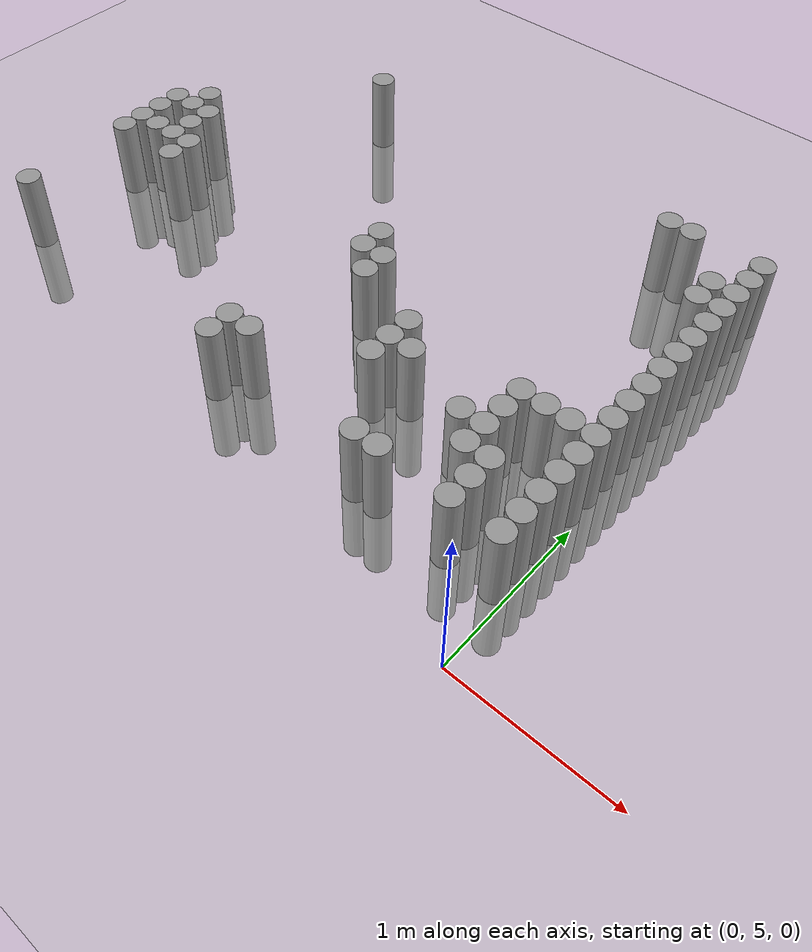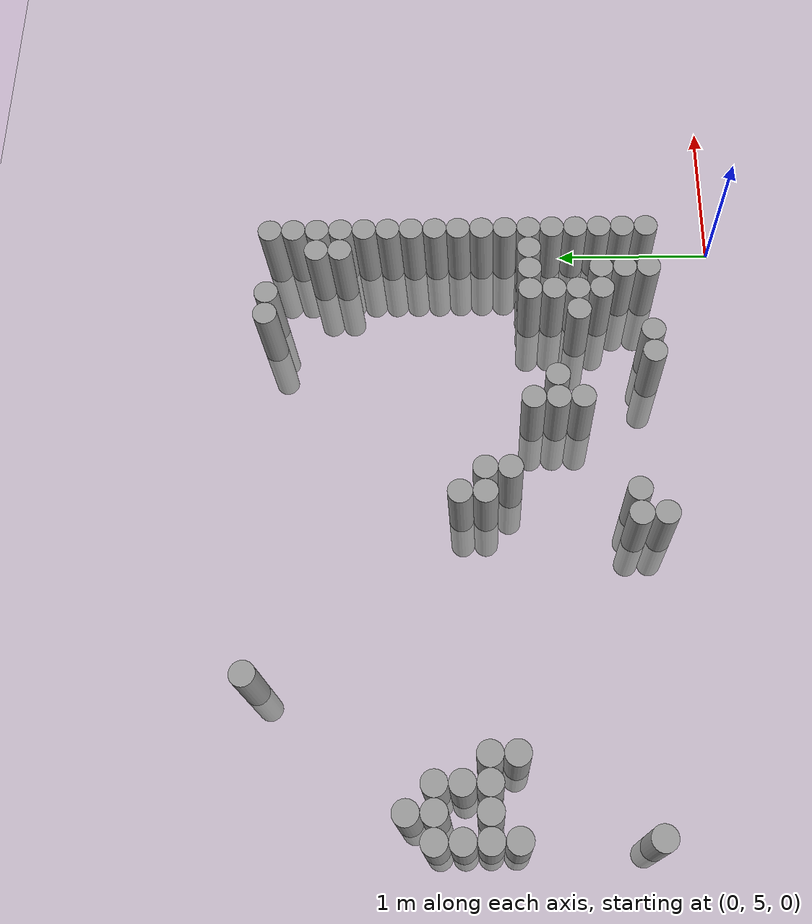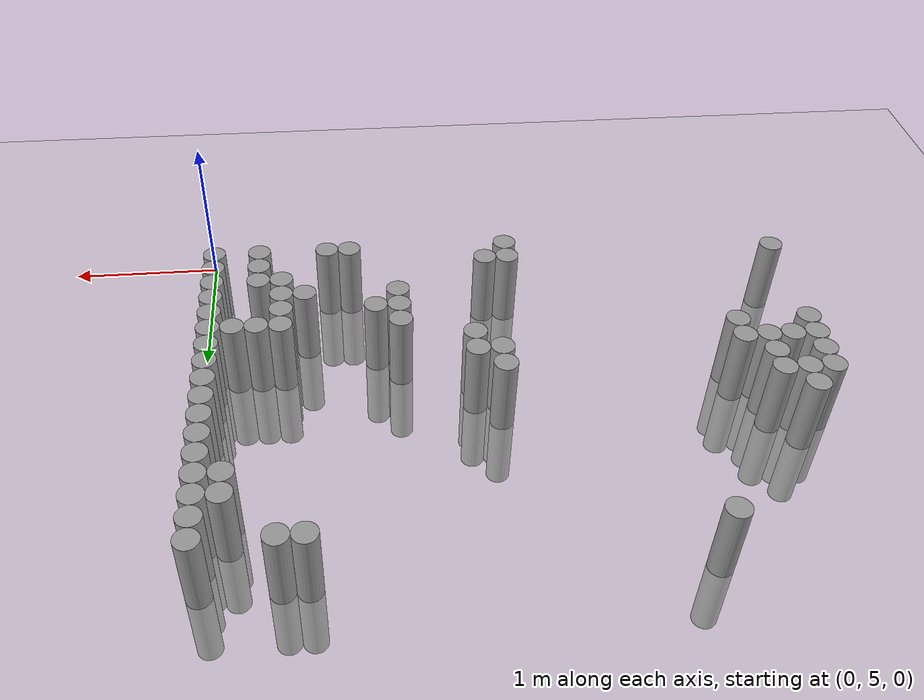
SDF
<sdf version="1.6">
 <world name="default">
  <model name="ground_plane">
   <static>1</static>
   <link name="link">
    <collision name="collision">
     <geometry><plane><normal>0 0 1</normal><size>100 100</size></plane></geometry>
     <surface><friction><ode><mu>100</mu><mu2>50</mu2></ode></friction></surface>
    </collision>
    <visual name="visual">
     <cast_shadows>0</cast_shadows>
     <geometry><plane><normal>0 0 1</normal><size>100 100</size></plane></geometry>
     <material>
      <script><uri>file://media/materials/scripts/gazebo.material</uri><name>Gazebo/Grey</name></script>
     </material>
    </visual>
   </link>
  </model>
  <model name="unit_cylinder_164">
   <pose>-3.825000 5.625000 0.000000 0.000000 0.000000 0.000000</pose>
   <link name="link">
    <inertial>
     <mass>1</mass>
     <inertia><ixx>0.145833</ixx><ixy>0</ixy><ixz>0</ixz><iyy>0.145833</iyy><iyz>0</iyz><izz>0.125</izz></inertia>
    </inertial>
    <collision name="collision">
     <geometry><cylinder><radius>0.075000</radius><length>1</length></cylinder></geometry>
    </collision>
    <visual name="visual">
     <geometry><cylinder><radius>0.075000</radius><length>1</length></cylinder></geometry>
     <material>
      <script><name>Gazebo/Grey</name><uri>file://media/materials/scripts/gazebo.material</uri></script>
     </material>
    </visual>
   </link>
  </model>
  <model name="unit_cylinder_165">
   <pose>-3.825000 6.375000 0.000000 0.000000 0.000000 0.000000</pose>
   <link name="link">
    <inertial>
     <mass>1</mass>
     <inertia><ixx>0.145833</ixx><ixy>0</ixy><ixz>0</ixz><iyy>0.145833</iyy><iyz>0</iyz><izz>0.125</izz></inertia>
    </inertial>
    <collision name="collision">
     <geometry><cylinder><radius>0.075000</radius><length>1</length></cylinder></geometry>
    </collision>
    <visual name="visual">
     <geometry><cylinder><radius>0.075000</radius><length>1</length></cylinder></geometry>
     <material>
      <script><name>Gazebo/Grey</name><uri>file://media/materials/scripts/gazebo.material</uri></script>
     </material>
    </visual>
   </link>
  </model>
  <model name="unit_cylinder_166">
   <pose>-3.825000 6.525000 0.000000 0.000000 0.000000 0.000000</pose>
   <link name="link">
    <inertial>
     <mass>1</mass>
     <inertia><ixx>0.145833</ixx><ixy>0</ixy><ixz>0</ixz><iyy>0.145833</iyy><iyz>0</iyz><izz>0.125</izz></inertia>
    </inertial>
    <collision name="collision">
     <geometry><cylinder><radius>0.075000</radius><length>1</length></cylinder></geometry>
    </collision>
    <visual name="visual">
     <geometry><cylinder><radius>0.075000</radius><length>1</length></cylinder></geometry>
     <material>
      <script><name>Gazebo/Grey</name><uri>file://media/materials/scripts/gazebo.material</uri></script>
     </material>
    </visual>
   </link>
  </model>
  <model name="unit_cylinder_167">
   <pose>-3.825000 6.675000 0.000000 0.000000 0.000000 0.000000</pose>
   <link name="link">
    <inertial>
     <mass>1</mass>
     <inertia><ixx>0.145833</ixx><ixy>0</ixy><ixz>0</ixz><iyy>0.145833</iyy><iyz>0</iyz><izz>0.125</izz></inertia>
    </inertial>
    <collision name="collision">
     <geometry><cylinder><radius>0.075000</radius><length>1</length></cylinder></geometry>
    </collision>
    <visual name="visual">
     <geometry><cylinder><radius>0.075000</radius><length>1</length></cylinder></geometry>
     <material>
      <script><name>Gazebo/Grey</name><uri>file://media/materials/scripts/gazebo.material</uri></script>
     </material>
    </visual>
   </link>
  </model>
  <model name="unit_cylinder_168">
   <pose>-3.825000 6.825000 0.000000 0.000000 0.000000 0.000000</pose>
   <link name="link">
    <inertial>
     <mass>1</mass>
     <inertia><ixx>0.145833</ixx><ixy>0</ixy><ixz>0</ixz><iyy>0.145833</iyy><iyz>0</iyz><izz>0.125</izz></inertia>
    </inertial>
    <collision name="collision">
     <geometry><cylinder><radius>0.075000</radius><length>1</length></cylinder></geometry>
    </collision>
    <visual name="visual">
     <geometry><cylinder><radius>0.075000</radius><length>1</length></cylinder></geometry>
     <material>
      <script><name>Gazebo/Grey</name><uri>file://media/materials/scripts/gazebo.material</uri></script>
     </material>
    </visual>
   </link>
  </model>
  <model name="unit_cylinder_170">
   <pose>-3.675000 6.525000 0.000000 0.000000 0.000000 0.000000</pose>
   <link name="link">
    <inertial>
     <mass>1</mass>
     <inertia><ixx>0.145833</ixx><ixy>0</ixy><ixz>0</ixz><iyy>0.145833</iyy><iyz>0</iyz><izz>0.125</izz></inertia>
    </inertial>
    <collision name="collision">
     <geometry><cylinder><radius>0.075000</radius><length>1</length></cylinder></geometry>
    </collision>
    <visual name="visual">
     <geometry><cylinder><radius>0.075000</radius><length>1</length></cylinder></geometry>
     <material>
      <script><name>Gazebo/Grey</name><uri>file://media/materials/scripts/gazebo.material</uri></script>
     </material>
    </visual>
   </link>
  </model>
  <model name="unit_cylinder_171">
   <pose>-3.675000 6.825000 0.000000 0.000000 0.000000 0.000000</pose>
   <link name="link">
    <inertial>
     <mass>1</mass>
     <inertia><ixx>0.145833</ixx><ixy>0</ixy><ixz>0</ixz><iyy>0.145833</iyy><iyz>0</iyz><izz>0.125</izz></inertia>
    </inertial>
    <collision name="collision">
     <geometry><cylinder><radius>0.075000</radius><length>1</length></cylinder></geometry>
    </collision>
    <visual name="visual">
     <geometry><cylinder><radius>0.075000</radius><length>1</length></cylinder></geometry>
     <material>
      <script><name>Gazebo/Grey</name><uri>file://media/materials/scripts/gazebo.material</uri></script>
     </material>
    </visual>
   </link>
  </model>
  <model name="unit_cylinder_172">
   <pose>-3.675000 6.975000 0.000000 0.000000 0.000000 0.000000</pose>
   <link name="link">
    <inertial>
     <mass>1</mass>
     <inertia><ixx>0.145833</ixx><ixy>0</ixy><ixz>0</ixz><iyy>0.145833</iyy><iyz>0</iyz><izz>0.125</izz></inertia>
    </inertial>
    <collision name="collision">
     <geometry><cylinder><radius>0.075000</radius><length>1</length></cylinder></geometry>
    </collision>
    <visual name="visual">
     <geometry><cylinder><radius>0.075000</radius><length>1</length></cylinder></geometry>
     <material>
      <script><name>Gazebo/Grey</name><uri>file://media/materials/scripts/gazebo.material</uri></script>
     </material>
    </visual>
   </link>
  </model>
  <model name="unit_cylinder_174">
   <pose>-3.525000 6.525000 0.000000 0.000000 0.000000 0.000000</pose>
   <link name="link">
    <inertial>
     <mass>1</mass>
     <inertia><ixx>0.145833</ixx><ixy>0</ixy><ixz>0</ixz><iyy>0.145833</iyy><iyz>0</iyz><izz>0.125</izz></inertia>
    </inertial>
    <collision name="collision">
     <geometry><cylinder><radius>0.075000</radius><length>1</length></cylinder></geometry>
    </collision>
    <visual name="visual">
     <geometry><cylinder><radius>0.075000</radius><length>1</length></cylinder></geometry>
     <material>
      <script><name>Gazebo/Grey</name><uri>file://media/materials/scripts/gazebo.material</uri></script>
     </material>
    </visual>
   </link>
  </model>
  <model name="unit_cylinder_175">
   <pose>-3.525000 6.675000 0.000000 0.000000 0.000000 0.000000</pose>
   <link name="link">
    <inertial>
     <mass>1</mass>
     <inertia><ixx>0.145833</ixx><ixy>0</ixy><ixz>0</ixz><iyy>0.145833</iyy><iyz>0</iyz><izz>0.125</izz></inertia>
    </inertial>
    <collision name="collision">
     <geometry><cylinder><radius>0.075000</radius><length>1</length></cylinder></geometry>
    </collision>
    <visual name="visual">
     <geometry><cylinder><radius>0.075000</radius><length>1</length></cylinder></geometry>
     <material>
      <script><name>Gazebo/Grey</name><uri>file://media/materials/scripts/gazebo.material</uri></script>
     </material>
    </visual>
   </link>
  </model>
  <model name="unit_cylinder_176">
   <pose>-3.525000 6.825000 0.000000 0.000000 0.000000 0.000000</pose>
   <link name="link">
    <inertial>
     <mass>1</mass>
     <inertia><ixx>0.145833</ixx><ixy>0</ixy><ixz>0</ixz><iyy>0.145833</iyy><iyz>0</iyz><izz>0.125</izz></inertia>
    </inertial>
    <collision name="collision">
     <geometry><cylinder><radius>0.075000</radius><length>1</length></cylinder></geometry>
    </collision>
    <visual name="visual">
     <geometry><cylinder><radius>0.075000</radius><length>1</length></cylinder></geometry>
     <material>
      <script><name>Gazebo/Grey</name><uri>file://media/materials/scripts/gazebo.material</uri></script>
     </material>
    </visual>
   </link>
  </model>
  <model name="unit_cylinder_179">
   <pose>-3.375000 6.375000 0.000000 0.000000 0.000000 0.000000</pose>
   <link name="link">
    <inertial>
     <mass>1</mass>
     <inertia><ixx>0.145833</ixx><ixy>0</ixy><ixz>0</ixz><iyy>0.145833</iyy><iyz>0</iyz><izz>0.125</izz></inertia>
    </inertial>
    <collision name="collision">
     <geometry><cylinder><radius>0.075000</radius><length>1</length></cylinder></geometry>
    </collision>
    <visual name="visual">
     <geometry><cylinder><radius>0.075000</radius><length>1</length></cylinder></geometry>
     <material>
      <script><name>Gazebo/Grey</name><uri>file://media/materials/scripts/gazebo.material</uri></script>
     </material>
    </visual>
   </link>
  </model>
  <model name="unit_cylinder_180">
   <pose>-3.375000 6.525000 0.000000 0.000000 0.000000 0.000000</pose>
   <link name="link">
    <inertial>
     <mass>1</mass>
     <inertia><ixx>0.145833</ixx><ixy>0</ixy><ixz>0</ixz><iyy>0.145833</iyy><iyz>0</iyz><izz>0.125</izz></inertia>
    </inertial>
    <collision name="collision">
     <geometry><cylinder><radius>0.075000</radius><length>1</length></cylinder></geometry>
    </collision>
    <visual name="visual">
     <geometry><cylinder><radius>0.075000</radius><length>1</length></cylinder></geometry>
     <material>
      <script><name>Gazebo/Grey</name><uri>file://media/materials/scripts/gazebo.material</uri></script>
     </material>
    </visual>
   </link>
  </model>
  <model name="unit_cylinder_192">
   <pose>-2.925000 7.875000 0.000000 0.000000 0.000000 0.000000</pose>
   <link name="link">
    <inertial>
     <mass>1</mass>
     <inertia><ixx>0.145833</ixx><ixy>0</ixy><ixz>0</ixz><iyy>0.145833</iyy><iyz>0</iyz><izz>0.125</izz></inertia>
    </inertial>
    <collision name="collision">
     <geometry><cylinder><radius>0.075000</radius><length>1</length></cylinder></geometry>
    </collision>
    <visual name="visual">
     <geometry><cylinder><radius>0.075000</radius><length>1</length></cylinder></geometry>
     <material>
      <script><name>Gazebo/Grey</name><uri>file://media/materials/scripts/gazebo.material</uri></script>
     </material>
    </visual>
   </link>
  </model>
  <model name="unit_cylinder_208">
   <pose>-2.025000 5.475000 0.000000 0.000000 0.000000 0.000000</pose>
   <link name="link">
    <inertial>
     <mass>1</mass>
     <inertia><ixx>0.145833</ixx><ixy>0</ixy><ixz>0</ixz><iyy>0.145833</iyy><iyz>0</iyz><izz>0.125</izz></inertia>
    </inertial>
    <collision name="collision">
     <geometry><cylinder><radius>0.075000</radius><length>1</length></cylinder></geometry>
    </collision>
    <visual name="visual">
     <geometry><cylinder><radius>0.075000</radius><length>1</length></cylinder></geometry>
     <material>
      <script><name>Gazebo/Grey</name><uri>file://media/materials/scripts/gazebo.material</uri></script>
     </material>
    </visual>
   </link>
  </model>
  <model name="unit_cylinder_209">
   <pose>-2.025000 5.625000 0.000000 0.000000 0.000000 0.000000</pose>
   <link name="link">
    <inertial>
     <mass>1</mass>
     <inertia><ixx>0.145833</ixx><ixy>0</ixy><ixz>0</ixz><iyy>0.145833</iyy><iyz>0</iyz><izz>0.125</izz></inertia>
    </inertial>
    <collision name="collision">
     <geometry><cylinder><radius>0.075000</radius><length>1</length></cylinder></geometry>
    </collision>
    <visual name="visual">
     <geometry><cylinder><radius>0.075000</radius><length>1</length></cylinder></geometry>
     <material>
      <script><name>Gazebo/Grey</name><uri>file://media/materials/scripts/gazebo.material</uri></script>
     </material>
    </visual>
   </link>
  </model>
  <model name="unit_cylinder_212">
   <pose>-1.875000 5.625000 0.000000 0.000000 0.000000 0.000000</pose>
   <link name="link">
    <inertial>
     <mass>1</mass>
     <inertia><ixx>0.145833</ixx><ixy>0</ixy><ixz>0</ixz><iyy>0.145833</iyy><iyz>0</iyz><izz>0.125</izz></inertia>
    </inertial>
    <collision name="collision">
     <geometry><cylinder><radius>0.075000</radius><length>1</length></cylinder></geometry>
    </collision>
    <visual name="visual">
     <geometry><cylinder><radius>0.075000</radius><length>1</length></cylinder></geometry>
     <material>
      <script><name>Gazebo/Grey</name><uri>file://media/materials/scripts/gazebo.material</uri></script>
     </material>
    </visual>
   </link>
  </model>
  <model name="unit_cylinder_213">
   <pose>-1.875000 6.525000 0.000000 0.000000 0.000000 0.000000</pose>
   <link name="link">
    <inertial>
     <mass>1</mass>
     <inertia><ixx>0.145833</ixx><ixy>0</ixy><ixz>0</ixz><iyy>0.145833</iyy><iyz>0</iyz><izz>0.125</izz></inertia>
    </inertial>
    <collision name="collision">
     <geometry><cylinder><radius>0.075000</radius><length>1</length></cylinder></geometry>
    </collision>
    <visual name="visual">
     <geometry><cylinder><radius>0.075000</radius><length>1</length></cylinder></geometry>
     <material>
      <script><name>Gazebo/Grey</name><uri>file://media/materials/scripts/gazebo.material</uri></script>
     </material>
    </visual>
   </link>
  </model>
  <model name="unit_cylinder_214">
   <pose>-1.875000 6.675000 0.000000 0.000000 0.000000 0.000000</pose>
   <link name="link">
    <inertial>
     <mass>1</mass>
     <inertia><ixx>0.145833</ixx><ixy>0</ixy><ixz>0</ixz><iyy>0.145833</iyy><iyz>0</iyz><izz>0.125</izz></inertia>
    </inertial>
    <collision name="collision">
     <geometry><cylinder><radius>0.075000</radius><length>1</length></cylinder></geometry>
    </collision>
    <visual name="visual">
     <geometry><cylinder><radius>0.075000</radius><length>1</length></cylinder></geometry>
     <material>
      <script><name>Gazebo/Grey</name><uri>file://media/materials/scripts/gazebo.material</uri></script>
     </material>
    </visual>
   </link>
  </model>
  <model name="unit_cylinder_215">
   <pose>-1.725000 6.375000 0.000000 0.000000 0.000000 0.000000</pose>
   <link name="link">
    <inertial>
     <mass>1</mass>
     <inertia><ixx>0.145833</ixx><ixy>0</ixy><ixz>0</ixz><iyy>0.145833</iyy><iyz>0</iyz><izz>0.125</izz></inertia>
    </inertial>
    <collision name="collision">
     <geometry><cylinder><radius>0.075000</radius><length>1</length></cylinder></geometry>
    </collision>
    <visual name="visual">
     <geometry><cylinder><radius>0.075000</radius><length>1</length></cylinder></geometry>
     <material>
      <script><name>Gazebo/Grey</name><uri>file://media/materials/scripts/gazebo.material</uri></script>
     </material>
    </visual>
   </link>
  </model>
  <model name="unit_cylinder_216">
   <pose>-1.725000 6.525000 0.000000 0.000000 0.000000 0.000000</pose>
   <link name="link">
    <inertial>
     <mass>1</mass>
     <inertia><ixx>0.145833</ixx><ixy>0</ixy><ixz>0</ixz><iyy>0.145833</iyy><iyz>0</iyz><izz>0.125</izz></inertia>
    </inertial>
    <collision name="collision">
     <geometry><cylinder><radius>0.075000</radius><length>1</length></cylinder></geometry>
    </collision>
    <visual name="visual">
     <geometry><cylinder><radius>0.075000</radius><length>1</length></cylinder></geometry>
     <material>
      <script><name>Gazebo/Grey</name><uri>file://media/materials/scripts/gazebo.material</uri></script>
     </material>
    </visual>
   </link>
  </model>
  <model name="unit_cylinder_217">
   <pose>-1.275000 5.925000 0.000000 0.000000 0.000000 0.000000</pose>
   <link name="link">
    <inertial>
     <mass>1</mass>
     <inertia><ixx>0.145833</ixx><ixy>0</ixy><ixz>0</ixz><iyy>0.145833</iyy><iyz>0</iyz><izz>0.125</izz></inertia>
    </inertial>
    <collision name="collision">
     <geometry><cylinder><radius>0.075000</radius><length>1</length></cylinder></geometry>
    </collision>
    <visual name="visual">
     <geometry><cylinder><radius>0.075000</radius><length>1</length></cylinder></geometry>
     <material>
      <script><name>Gazebo/Grey</name><uri>file://media/materials/scripts/gazebo.material</uri></script>
     </material>
    </visual>
   </link>
  </model>
  <model name="unit_cylinder_218">
   <pose>-1.275000 6.075000 0.000000 0.000000 0.000000 0.000000</pose>
   <link name="link">
    <inertial>
     <mass>1</mass>
     <inertia><ixx>0.145833</ixx><ixy>0</ixy><ixz>0</ixz><iyy>0.145833</iyy><iyz>0</iyz><izz>0.125</izz></inertia>
    </inertial>
    <collision name="collision">
     <geometry><cylinder><radius>0.075000</radius><length>1</length></cylinder></geometry>
    </collision>
    <visual name="visual">
     <geometry><cylinder><radius>0.075000</radius><length>1</length></cylinder></geometry>
     <material>
      <script><name>Gazebo/Grey</name><uri>file://media/materials/scripts/gazebo.material</uri></script>
     </material>
    </visual>
   </link>
  </model>
  <model name="unit_cylinder_219">
   <pose>-1.275000 6.225000 0.000000 0.000000 0.000000 0.000000</pose>
   <link name="link">
    <inertial>
     <mass>1</mass>
     <inertia><ixx>0.145833</ixx><ixy>0</ixy><ixz>0</ixz><iyy>0.145833</iyy><iyz>0</iyz><izz>0.125</izz></inertia>
    </inertial>
    <collision name="collision">
     <geometry><cylinder><radius>0.075000</radius><length>1</length></cylinder></geometry>
    </collision>
    <visual name="visual">
     <geometry><cylinder><radius>0.075000</radius><length>1</length></cylinder></geometry>
     <material>
      <script><name>Gazebo/Grey</name><uri>file://media/materials/scripts/gazebo.material</uri></script>
     </material>
    </visual>
   </link>
  </model>
  <model name="unit_cylinder_221">
   <pose>-1.125000 6.075000 0.000000 0.000000 0.000000 0.000000</pose>
   <link name="link">
    <inertial>
     <mass>1</mass>
     <inertia><ixx>0.145833</ixx><ixy>0</ixy><ixz>0</ixz><iyy>0.145833</iyy><iyz>0</iyz><izz>0.125</izz></inertia>
    </inertial>
    <collision name="collision">
     <geometry><cylinder><radius>0.075000</radius><length>1</length></cylinder></geometry>
    </collision>
    <visual name="visual">
     <geometry><cylinder><radius>0.075000</radius><length>1</length></cylinder></geometry>
     <material>
      <script><name>Gazebo/Grey</name><uri>file://media/materials/scripts/gazebo.material</uri></script>
     </material>
    </visual>
   </link>
  </model>
  <model name="unit_cylinder_223">
   <pose>-0.975000 5.475000 0.000000 0.000000 0.000000 0.000000</pose>
   <link name="link">
    <inertial>
     <mass>1</mass>
     <inertia><ixx>0.145833</ixx><ixy>0</ixy><ixz>0</ixz><iyy>0.145833</iyy><iyz>0</iyz><izz>0.125</izz></inertia>
    </inertial>
    <collision name="collision">
     <geometry><cylinder><radius>0.075000</radius><length>1</length></cylinder></geometry>
    </collision>
    <visual name="visual">
     <geometry><cylinder><radius>0.075000</radius><length>1</length></cylinder></geometry>
     <material>
      <script><name>Gazebo/Grey</name><uri>file://media/materials/scripts/gazebo.material</uri></script>
     </material>
    </visual>
   </link>
  </model>
  <model name="unit_cylinder_227">
   <pose>-0.825000 5.475000 0.000000 0.000000 0.000000 0.000000</pose>
   <link name="link">
    <inertial>
     <mass>1</mass>
     <inertia><ixx>0.145833</ixx><ixy>0</ixy><ixz>0</ixz><iyy>0.145833</iyy><iyz>0</iyz><izz>0.125</izz></inertia>
    </inertial>
    <collision name="collision">
     <geometry><cylinder><radius>0.075000</radius><length>1</length></cylinder></geometry>
    </collision>
    <visual name="visual">
     <geometry><cylinder><radius>0.075000</radius><length>1</length></cylinder></geometry>
     <material>
      <script><name>Gazebo/Grey</name><uri>file://media/materials/scripts/gazebo.material</uri></script>
     </material>
    </visual>
   </link>
  </model>
  <model name="unit_cylinder_231">
   <pose>-0.675000 5.925000 0.000000 0.000000 0.000000 0.000000</pose>
   <link name="link">
    <inertial>
     <mass>1</mass>
     <inertia><ixx>0.145833</ixx><ixy>0</ixy><ixz>0</ixz><iyy>0.145833</iyy><iyz>0</iyz><izz>0.125</izz></inertia>
    </inertial>
    <collision name="collision">
     <geometry><cylinder><radius>0.075000</radius><length>1</length></cylinder></geometry>
    </collision>
    <visual name="visual">
     <geometry><cylinder><radius>0.075000</radius><length>1</length></cylinder></geometry>
     <material>
      <script><name>Gazebo/Grey</name><uri>file://media/materials/scripts/gazebo.material</uri></script>
     </material>
    </visual>
   </link>
  </model>
  <model name="unit_cylinder_232">
   <pose>-0.675000 7.875000 0.000000 0.000000 0.000000 0.000000</pose>
   <link name="link">
    <inertial>
     <mass>1</mass>
     <inertia><ixx>0.145833</ixx><ixy>0</ixy><ixz>0</ixz><iyy>0.145833</iyy><iyz>0</iyz><izz>0.125</izz></inertia>
    </inertial>
    <collision name="collision">
     <geometry><cylinder><radius>0.075000</radius><length>1</length></cylinder></geometry>
    </collision>
    <visual name="visual">
     <geometry><cylinder><radius>0.075000</radius><length>1</length></cylinder></geometry>
     <material>
      <script><name>Gazebo/Grey</name><uri>file://media/materials/scripts/gazebo.material</uri></script>
     </material>
    </visual>
   </link>
  </model>
  <model name="unit_cylinder_235">
   <pose>-0.525000 5.775000 0.000000 0.000000 0.000000 0.000000</pose>
   <link name="link">
    <inertial>
     <mass>1</mass>
     <inertia><ixx>0.145833</ixx><ixy>0</ixy><ixz>0</ixz><iyy>0.145833</iyy><iyz>0</iyz><izz>0.125</izz></inertia>
    </inertial>
    <collision name="collision">
     <geometry><cylinder><radius>0.075000</radius><length>1</length></cylinder></geometry>
    </collision>
    <visual name="visual">
     <geometry><cylinder><radius>0.075000</radius><length>1</length></cylinder></geometry>
     <material>
      <script><name>Gazebo/Grey</name><uri>file://media/materials/scripts/gazebo.material</uri></script>
     </material>
    </visual>
   </link>
  </model>
  <model name="unit_cylinder_236">
   <pose>-0.525000 5.925000 0.000000 0.000000 0.000000 0.000000</pose>
   <link name="link">
    <inertial>
     <mass>1</mass>
     <inertia><ixx>0.145833</ixx><ixy>0</ixy><ixz>0</ixz><iyy>0.145833</iyy><iyz>0</iyz><izz>0.125</izz></inertia>
    </inertial>
    <collision name="collision">
     <geometry><cylinder><radius>0.075000</radius><length>1</length></cylinder></geometry>
    </collision>
    <visual name="visual">
     <geometry><cylinder><radius>0.075000</radius><length>1</length></cylinder></geometry>
     <material>
      <script><name>Gazebo/Grey</name><uri>file://media/materials/scripts/gazebo.material</uri></script>
     </material>
    </visual>
   </link>
  </model>
  <model name="unit_cylinder_237">
   <pose>-0.525000 6.075000 0.000000 0.000000 0.000000 0.000000</pose>
   <link name="link">
    <inertial>
     <mass>1</mass>
     <inertia><ixx>0.145833</ixx><ixy>0</ixy><ixz>0</ixz><iyy>0.145833</iyy><iyz>0</iyz><izz>0.125</izz></inertia>
    </inertial>
    <collision name="collision">
     <geometry><cylinder><radius>0.075000</radius><length>1</length></cylinder></geometry>
    </collision>
    <visual name="visual">
     <geometry><cylinder><radius>0.075000</radius><length>1</length></cylinder></geometry>
     <material>
      <script><name>Gazebo/Grey</name><uri>file://media/materials/scripts/gazebo.material</uri></script>
     </material>
    </visual>
   </link>
  </model>
  <model name="unit_cylinder_238">
   <pose>-0.525000 6.225000 0.000000 0.000000 0.000000 0.000000</pose>
   <link name="link">
    <inertial>
     <mass>1</mass>
     <inertia><ixx>0.145833</ixx><ixy>0</ixy><ixz>0</ixz><iyy>0.145833</iyy><iyz>0</iyz><izz>0.125</izz></inertia>
    </inertial>
    <collision name="collision">
     <geometry><cylinder><radius>0.075000</radius><length>1</length></cylinder></geometry>
    </collision>
    <visual name="visual">
     <geometry><cylinder><radius>0.075000</radius><length>1</length></cylinder></geometry>
     <material>
      <script><name>Gazebo/Grey</name><uri>file://media/materials/scripts/gazebo.material</uri></script>
     </material>
    </visual>
   </link>
  </model>
  <model name="unit_cylinder_239">
   <pose>-0.525000 7.875000 0.000000 0.000000 0.000000 0.000000</pose>
   <link name="link">
    <inertial>
     <mass>1</mass>
     <inertia><ixx>0.145833</ixx><ixy>0</ixy><ixz>0</ixz><iyy>0.145833</iyy><iyz>0</iyz><izz>0.125</izz></inertia>
    </inertial>
    <collision name="collision">
     <geometry><cylinder><radius>0.075000</radius><length>1</length></cylinder></geometry>
    </collision>
    <visual name="visual">
     <geometry><cylinder><radius>0.075000</radius><length>1</length></cylinder></geometry>
     <material>
      <script><name>Gazebo/Grey</name><uri>file://media/materials/scripts/gazebo.material</uri></script>
     </material>
    </visual>
   </link>
  </model>
  <model name="unit_cylinder_243">
   <pose>-0.375000 5.475000 0.000000 0.000000 0.000000 0.000000</pose>
   <link name="link">
    <inertial>
     <mass>1</mass>
     <inertia><ixx>0.145833</ixx><ixy>0</ixy><ixz>0</ixz><iyy>0.145833</iyy><iyz>0</iyz><izz>0.125</izz></inertia>
    </inertial>
    <collision name="collision">
     <geometry><cylinder><radius>0.075000</radius><length>1</length></cylinder></geometry>
    </collision>
    <visual name="visual">
     <geometry><cylinder><radius>0.075000</radius><length>1</length></cylinder></geometry>
     <material>
      <script><name>Gazebo/Grey</name><uri>file://media/materials/scripts/gazebo.material</uri></script>
     </material>
    </visual>
   </link>
  </model>
  <model name="unit_cylinder_244">
   <pose>-0.375000 5.625000 0.000000 0.000000 0.000000 0.000000</pose>
   <link name="link">
    <inertial>
     <mass>1</mass>
     <inertia><ixx>0.145833</ixx><ixy>0</ixy><ixz>0</ixz><iyy>0.145833</iyy><iyz>0</iyz><izz>0.125</izz></inertia>
    </inertial>
    <collision name="collision">
     <geometry><cylinder><radius>0.075000</radius><length>1</length></cylinder></geometry>
    </collision>
    <visual name="visual">
     <geometry><cylinder><radius>0.075000</radius><length>1</length></cylinder></geometry>
     <material>
      <script><name>Gazebo/Grey</name><uri>file://media/materials/scripts/gazebo.material</uri></script>
     </material>
    </visual>
   </link>
  </model>
  <model name="unit_cylinder_245">
   <pose>-0.375000 5.775000 0.000000 0.000000 0.000000 0.000000</pose>
   <link name="link">
    <inertial>
     <mass>1</mass>
     <inertia><ixx>0.145833</ixx><ixy>0</ixy><ixz>0</ixz><iyy>0.145833</iyy><iyz>0</iyz><izz>0.125</izz></inertia>
    </inertial>
    <collision name="collision">
     <geometry><cylinder><radius>0.075000</radius><length>1</length></cylinder></geometry>
    </collision>
    <visual name="visual">
     <geometry><cylinder><radius>0.075000</radius><length>1</length></cylinder></geometry>
     <material>
      <script><name>Gazebo/Grey</name><uri>file://media/materials/scripts/gazebo.material</uri></script>
     </material>
    </visual>
   </link>
  </model>
  <model name="unit_cylinder_246">
   <pose>-0.375000 6.225000 0.000000 0.000000 0.000000 0.000000</pose>
   <link name="link">
    <inertial>
     <mass>1</mass>
     <inertia><ixx>0.145833</ixx><ixy>0</ixy><ixz>0</ixz><iyy>0.145833</iyy><iyz>0</iyz><izz>0.125</izz></inertia>
    </inertial>
    <collision name="collision">
     <geometry><cylinder><radius>0.075000</radius><length>1</length></cylinder></geometry>
    </collision>
    <visual name="visual">
     <geometry><cylinder><radius>0.075000</radius><length>1</length></cylinder></geometry>
     <material>
      <script><name>Gazebo/Grey</name><uri>file://media/materials/scripts/gazebo.material</uri></script>
     </material>
    </visual>
   </link>
  </model>
  <model name="unit_cylinder_248">
   <pose>-0.225000 6.225000 0.000000 0.000000 0.000000 0.000000</pose>
   <link name="link">
    <inertial>
     <mass>1</mass>
     <inertia><ixx>0.145833</ixx><ixy>0</ixy><ixz>0</ixz><iyy>0.145833</iyy><iyz>0</iyz><izz>0.125</izz></inertia>
    </inertial>
    <collision name="collision">
     <geometry><cylinder><radius>0.075000</radius><length>1</length></cylinder></geometry>
    </collision>
    <visual name="visual">
     <geometry><cylinder><radius>0.075000</radius><length>1</length></cylinder></geometry>
     <material>
      <script><name>Gazebo/Grey</name><uri>file://media/materials/scripts/gazebo.material</uri></script>
     </material>
    </visual>
   </link>
  </model>
  <model name="unit_cylinder_249">
   <pose>-0.225000 7.425000 0.000000 0.000000 0.000000 0.000000</pose>
   <link name="link">
    <inertial>
     <mass>1</mass>
     <inertia><ixx>0.145833</ixx><ixy>0</ixy><ixz>0</ixz><iyy>0.145833</iyy><iyz>0</iyz><izz>0.125</izz></inertia>
    </inertial>
    <collision name="collision">
     <geometry><cylinder><radius>0.075000</radius><length>1</length></cylinder></geometry>
    </collision>
    <visual name="visual">
     <geometry><cylinder><radius>0.075000</radius><length>1</length></cylinder></geometry>
     <material>
      <script><name>Gazebo/Grey</name><uri>file://media/materials/scripts/gazebo.material</uri></script>
     </material>
    </visual>
   </link>
  </model>
  <model name="unit_cylinder_250">
   <pose>-0.225000 7.575000 0.000000 0.000000 0.000000 0.000000</pose>
   <link name="link">
    <inertial>
     <mass>1</mass>
     <inertia><ixx>0.145833</ixx><ixy>0</ixy><ixz>0</ixz><iyy>0.145833</iyy><iyz>0</iyz><izz>0.125</izz></inertia>
    </inertial>
    <collision name="collision">
     <geometry><cylinder><radius>0.075000</radius><length>1</length></cylinder></geometry>
    </collision>
    <visual name="visual">
     <geometry><cylinder><radius>0.075000</radius><length>1</length></cylinder></geometry>
     <material>
      <script><name>Gazebo/Grey</name><uri>file://media/materials/scripts/gazebo.material</uri></script>
     </material>
    </visual>
   </link>
  </model>
  <model name="unit_cylinder_262">
   <pose>-0.075000 5.475000 0.000000 0.000000 0.000000 0.000000</pose>
   <link name="link">
    <inertial>
     <mass>1</mass>
     <inertia><ixx>0.145833</ixx><ixy>0</ixy><ixz>0</ixz><iyy>0.145833</iyy><iyz>0</iyz><izz>0.125</izz></inertia>
    </inertial>
    <collision name="collision">
     <geometry><cylinder><radius>0.075000</radius><length>1</length></cylinder></geometry>
    </collision>
    <visual name="visual">
     <geometry><cylinder><radius>0.075000</radius><length>1</length></cylinder></geometry>
     <material>
      <script><name>Gazebo/Grey</name><uri>file://media/materials/scripts/gazebo.material</uri></script>
     </material>
    </visual>
   </link>
  </model>
  <model name="unit_cylinder_263">
   <pose>-0.075000 5.625000 0.000000 0.000000 0.000000 0.000000</pose>
   <link name="link">
    <inertial>
     <mass>1</mass>
     <inertia><ixx>0.145833</ixx><ixy>0</ixy><ixz>0</ixz><iyy>0.145833</iyy><iyz>0</iyz><izz>0.125</izz></inertia>
    </inertial>
    <collision name="collision">
     <geometry><cylinder><radius>0.075000</radius><length>1</length></cylinder></geometry>
    </collision>
    <visual name="visual">
     <geometry><cylinder><radius>0.075000</radius><length>1</length></cylinder></geometry>
     <material>
      <script><name>Gazebo/Grey</name><uri>file://media/materials/scripts/gazebo.material</uri></script>
     </material>
    </visual>
   </link>
  </model>
  <model name="unit_cylinder_264">
   <pose>-0.075000 5.775000 0.000000 0.000000 0.000000 0.000000</pose>
   <link name="link">
    <inertial>
     <mass>1</mass>
     <inertia><ixx>0.145833</ixx><ixy>0</ixy><ixz>0</ixz><iyy>0.145833</iyy><iyz>0</iyz><izz>0.125</izz></inertia>
    </inertial>
    <collision name="collision">
     <geometry><cylinder><radius>0.075000</radius><length>1</length></cylinder></geometry>
    </collision>
    <visual name="visual">
     <geometry><cylinder><radius>0.075000</radius><length>1</length></cylinder></geometry>
     <material>
      <script><name>Gazebo/Grey</name><uri>file://media/materials/scripts/gazebo.material</uri></script>
     </material>
    </visual>
   </link>
  </model>
  <model name="unit_cylinder_265">
   <pose>-0.075000 5.925000 0.000000 0.000000 0.000000 0.000000</pose>
   <link name="link">
    <inertial>
     <mass>1</mass>
     <inertia><ixx>0.145833</ixx><ixy>0</ixy><ixz>0</ixz><iyy>0.145833</iyy><iyz>0</iyz><izz>0.125</izz></inertia>
    </inertial>
    <collision name="collision">
     <geometry><cylinder><radius>0.075000</radius><length>1</length></cylinder></geometry>
    </collision>
    <visual name="visual">
     <geometry><cylinder><radius>0.075000</radius><length>1</length></cylinder></geometry>
     <material>
      <script><name>Gazebo/Grey</name><uri>file://media/materials/scripts/gazebo.material</uri></script>
     </material>
    </visual>
   </link>
  </model>
  <model name="unit_cylinder_266">
   <pose>-0.075000 6.075000 0.000000 0.000000 0.000000 0.000000</pose>
   <link name="link">
    <inertial>
     <mass>1</mass>
     <inertia><ixx>0.145833</ixx><ixy>0</ixy><ixz>0</ixz><iyy>0.145833</iyy><iyz>0</iyz><izz>0.125</izz></inertia>
    </inertial>
    <collision name="collision">
     <geometry><cylinder><radius>0.075000</radius><length>1</length></cylinder></geometry>
    </collision>
    <visual name="visual">
     <geometry><cylinder><radius>0.075000</radius><length>1</length></cylinder></geometry>
     <material>
      <script><name>Gazebo/Grey</name><uri>file://media/materials/scripts/gazebo.material</uri></script>
     </material>
    </visual>
   </link>
  </model>
  <model name="unit_cylinder_267">
   <pose>-0.075000 6.225000 0.000000 0.000000 0.000000 0.000000</pose>
   <link name="link">
    <inertial>
     <mass>1</mass>
     <inertia><ixx>0.145833</ixx><ixy>0</ixy><ixz>0</ixz><iyy>0.145833</iyy><iyz>0</iyz><izz>0.125</izz></inertia>
    </inertial>
    <collision name="collision">
     <geometry><cylinder><radius>0.075000</radius><length>1</length></cylinder></geometry>
    </collision>
    <visual name="visual">
     <geometry><cylinder><radius>0.075000</radius><length>1</length></cylinder></geometry>
     <material>
      <script><name>Gazebo/Grey</name><uri>file://media/materials/scripts/gazebo.material</uri></script>
     </material>
    </visual>
   </link>
  </model>
  <model name="unit_cylinder_268">
   <pose>-0.075000 6.375000 0.000000 0.000000 0.000000 0.000000</pose>
   <link name="link">
    <inertial>
     <mass>1</mass>
     <inertia><ixx>0.145833</ixx><ixy>0</ixy><ixz>0</ixz><iyy>0.145833</iyy><iyz>0</iyz><izz>0.125</izz></inertia>
    </inertial>
    <collision name="collision">
     <geometry><cylinder><radius>0.075000</radius><length>1</length></cylinder></geometry>
    </collision>
    <visual name="visual">
     <geometry><cylinder><radius>0.075000</radius><length>1</length></cylinder></geometry>
     <material>
      <script><name>Gazebo/Grey</name><uri>file://media/materials/scripts/gazebo.material</uri></script>
     </material>
    </visual>
   </link>
  </model>
  <model name="unit_cylinder_269">
   <pose>-0.075000 6.525000 0.000000 0.000000 0.000000 0.000000</pose>
   <link name="link">
    <inertial>
     <mass>1</mass>
     <inertia><ixx>0.145833</ixx><ixy>0</ixy><ixz>0</ixz><iyy>0.145833</iyy><iyz>0</iyz><izz>0.125</izz></inertia>
    </inertial>
    <collision name="collision">
     <geometry><cylinder><radius>0.075000</radius><length>1</length></cylinder></geometry>
    </collision>
    <visual name="visual">
     <geometry><cylinder><radius>0.075000</radius><length>1</length></cylinder></geometry>
     <material>
      <script><name>Gazebo/Grey</name><uri>file://media/materials/scripts/gazebo.material</uri></script>
     </material>
    </visual>
   </link>
  </model>
  <model name="unit_cylinder_270">
   <pose>-0.075000 6.675000 0.000000 0.000000 0.000000 0.000000</pose>
   <link name="link">
    <inertial>
     <mass>1</mass>
     <inertia><ixx>0.145833</ixx><ixy>0</ixy><ixz>0</ixz><iyy>0.145833</iyy><iyz>0</iyz><izz>0.125</izz></inertia>
    </inertial>
    <collision name="collision">
     <geometry><cylinder><radius>0.075000</radius><length>1</length></cylinder></geometry>
    </collision>
    <visual name="visual">
     <geometry><cylinder><radius>0.075000</radius><length>1</length></cylinder></geometry>
     <material>
      <script><name>Gazebo/Grey</name><uri>file://media/materials/scripts/gazebo.material</uri></script>
     </material>
    </visual>
   </link>
  </model>
  <model name="unit_cylinder_271">
   <pose>-0.075000 6.825000 0.000000 0.000000 0.000000 0.000000</pose>
   <link name="link">
    <inertial>
     <mass>1</mass>
     <inertia><ixx>0.145833</ixx><ixy>0</ixy><ixz>0</ixz><iyy>0.145833</iyy><iyz>0</iyz><izz>0.125</izz></inertia>
    </inertial>
    <collision name="collision">
     <geometry><cylinder><radius>0.075000</radius><length>1</length></cylinder></geometry>
    </collision>
    <visual name="visual">
     <geometry><cylinder><radius>0.075000</radius><length>1</length></cylinder></geometry>
     <material>
      <script><name>Gazebo/Grey</name><uri>file://media/materials/scripts/gazebo.material</uri></script>
     </material>
    </visual>
   </link>
  </model>
  <model name="unit_cylinder_272">
   <pose>-0.075000 6.975000 0.000000 0.000000 0.000000 0.000000</pose>
   <link name="link">
    <inertial>
     <mass>1</mass>
     <inertia><ixx>0.145833</ixx><ixy>0</ixy><ixz>0</ixz><iyy>0.145833</iyy><iyz>0</iyz><izz>0.125</izz></inertia>
    </inertial>
    <collision name="collision">
     <geometry><cylinder><radius>0.075000</radius><length>1</length></cylinder></geometry>
    </collision>
    <visual name="visual">
     <geometry><cylinder><radius>0.075000</radius><length>1</length></cylinder></geometry>
     <material>
      <script><name>Gazebo/Grey</name><uri>file://media/materials/scripts/gazebo.material</uri></script>
     </material>
    </visual>
   </link>
  </model>
  <model name="unit_cylinder_273">
   <pose>-0.075000 7.125000 0.000000 0.000000 0.000000 0.000000</pose>
   <link name="link">
    <inertial>
     <mass>1</mass>
     <inertia><ixx>0.145833</ixx><ixy>0</ixy><ixz>0</ixz><iyy>0.145833</iyy><iyz>0</iyz><izz>0.125</izz></inertia>
    </inertial>
    <collision name="collision">
     <geometry><cylinder><radius>0.075000</radius><length>1</length></cylinder></geometry>
    </collision>
    <visual name="visual">
     <geometry><cylinder><radius>0.075000</radius><length>1</length></cylinder></geometry>
     <material>
      <script><name>Gazebo/Grey</name><uri>file://media/materials/scripts/gazebo.material</uri></script>
     </material>
    </visual>
   </link>
  </model>
  <model name="unit_cylinder_274">
   <pose>-0.075000 7.275000 0.000000 0.000000 0.000000 0.000000</pose>
   <link name="link">
    <inertial>
     <mass>1</mass>
     <inertia><ixx>0.145833</ixx><ixy>0</ixy><ixz>0</ixz><iyy>0.145833</iyy><iyz>0</iyz><izz>0.125</izz></inertia>
    </inertial>
    <collision name="collision">
     <geometry><cylinder><radius>0.075000</radius><length>1</length></cylinder></geometry>
    </collision>
    <visual name="visual">
     <geometry><cylinder><radius>0.075000</radius><length>1</length></cylinder></geometry>
     <material>
      <script><name>Gazebo/Grey</name><uri>file://media/materials/scripts/gazebo.material</uri></script>
     </material>
    </visual>
   </link>
  </model>
  <model name="unit_cylinder_275">
   <pose>-0.075000 7.425000 0.000000 0.000000 0.000000 0.000000</pose>
   <link name="link">
    <inertial>
     <mass>1</mass>
     <inertia><ixx>0.145833</ixx><ixy>0</ixy><ixz>0</ixz><iyy>0.145833</iyy><iyz>0</iyz><izz>0.125</izz></inertia>
    </inertial>
    <collision name="collision">
     <geometry><cylinder><radius>0.075000</radius><length>1</length></cylinder></geometry>
    </collision>
    <visual name="visual">
     <geometry><cylinder><radius>0.075000</radius><length>1</length></cylinder></geometry>
     <material>
      <script><name>Gazebo/Grey</name><uri>file://media/materials/scripts/gazebo.material</uri></script>
     </material>
    </visual>
   </link>
  </model>
  <model name="unit_cylinder_276">
   <pose>-0.075000 7.575000 0.000000 0.000000 0.000000 0.000000</pose>
   <link name="link">
    <inertial>
     <mass>1</mass>
     <inertia><ixx>0.145833</ixx><ixy>0</ixy><ixz>0</ixz><iyy>0.145833</iyy><iyz>0</iyz><izz>0.125</izz></inertia>
    </inertial>
    <collision name="collision">
     <geometry><cylinder><radius>0.075000</radius><length>1</length></cylinder></geometry>
    </collision>
    <visual name="visual">
     <geometry><cylinder><radius>0.075000</radius><length>1</length></cylinder></geometry>
     <material>
      <script><name>Gazebo/Grey</name><uri>file://media/materials/scripts/gazebo.material</uri></script>
     </material>
    </visual>
   </link>
  </model>
  <model name="unit_cylinder_277">
   <pose>-0.075000 7.725000 0.000000 0.000000 0.000000 0.000000</pose>
   <link name="link">
    <inertial>
     <mass>1</mass>
     <inertia><ixx>0.145833</ixx><ixy>0</ixy><ixz>0</ixz><iyy>0.145833</iyy><iyz>0</iyz><izz>0.125</izz></inertia>
    </inertial>
    <collision name="collision">
     <geometry><cylinder><radius>0.075000</radius><length>1</length></cylinder></geometry>
    </collision>
    <visual name="visual">
     <geometry><cylinder><radius>0.075000</radius><length>1</length></cylinder></geometry>
     <material>
      <script><name>Gazebo/Grey</name><uri>file://media/materials/scripts/gazebo.material</uri></script>
     </material>
    </visual>
   </link>
  </model>
  <model name="unit_cylinder_278">
   <pose>-0.075000 7.875000 0.000000 0.000000 0.000000 0.000000</pose>
   <link name="link">
    <inertial>
     <mass>1</mass>
     <inertia><ixx>0.145833</ixx><ixy>0</ixy><ixz>0</ixz><iyy>0.145833</iyy><iyz>0</iyz><izz>0.125</izz></inertia>
    </inertial>
    <collision name="collision">
     <geometry><cylinder><radius>0.075000</radius><length>1</length></cylinder></geometry>
    </collision>
    <visual name="visual">
     <geometry><cylinder><radius>0.075000</radius><length>1</length></cylinder></geometry>
     <material>
      <script><name>Gazebo/Grey</name><uri>file://media/materials/scripts/gazebo.material</uri></script>
     </material>
    </visual>
   </link>
  </model>
 </world>
</sdf>
